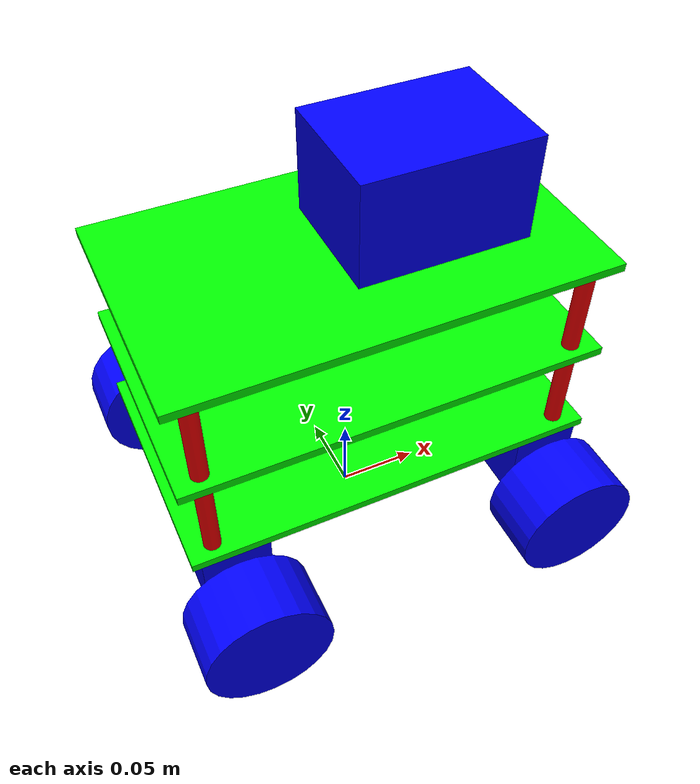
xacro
<?xml version="1.0"?>
<robot name="robot" xmlns:xacro="http://wiki.ros.org/xacro">

  <xacro:arg name="robot_type" default="omni"/>

  <xacro:property name="type" value="$(arg robot_type)" />

  <xacro:include filename="$(find haruto_description)/urdf/base.xacro"/>
  <xacro:include filename="$(find haruto_description)/urdf/pillar.xacro"/>
  <xacro:include filename="$(find haruto_description)/urdf/motor.xacro"/>
  <xacro:include filename="$(find haruto_description)/urdf/lidar.xacro"/>
  <xacro:include filename="$(find haruto_description)/urdf/wheel.xacro"/>

  <link name="world_link" />

  <xacro:robot_base parent="world_link" child="first_base_link" xyz="0 0 0.075" rpy="0 0 0" />
  <xacro:robot_base parent="first_base_link" child="second_base_link" xyz="0 0 0.06" rpy="0 0 0" />
  <xacro:robot_base parent="second_base_link" child="third_base_link" xyz="0 0 0.06" rpy="0 0 0" />

  <xacro:robot_pillar parent="first_base_link" child="first_front_left_pillar_link" xyz="0.11 0.065 0.03" rpy="0 0 0" />
  <xacro:robot_pillar parent="first_base_link" child="first_front_right_pillar_link" xyz="0.11 -0.065 0.03" rpy="0 0 0" />
  <xacro:robot_pillar parent="first_base_link" child="first_back_left_pillar_link" xyz="-0.11 0.065 0.03" rpy="0 0 0" />
  <xacro:robot_pillar parent="first_base_link" child="first_back_right_pillar_link" xyz="-0.11 -0.065 0.03" rpy="0 0 0" />

  <xacro:robot_pillar parent="second_base_link" child="second_front_left_pillar_link" xyz="0.11 0.065 0.03" rpy="0 0 0" />
  <xacro:robot_pillar parent="second_base_link" child="second_front_right_pillar_link" xyz="0.11 -0.065 0.03" rpy="0 0 0" />
  <xacro:robot_pillar parent="second_base_link" child="second_back_left_pillar_link" xyz="-0.11 0.065 0.03" rpy="0 0 0" />
  <xacro:robot_pillar parent="second_base_link" child="second_back_right_pillar_link" xyz="-0.11 -0.065 0.03" rpy="0 0 0" />

  <xacro:robot_motor parent="first_base_link" child="front_left_motor_link" xyz="0.10 0.040 -0.025" rpy="0 0 0" />
  <xacro:robot_motor parent="first_base_link" child="front_right_motor_link" xyz="0.10 -0.040 -0.025" rpy="0 0 0" />
  <xacro:robot_motor parent="first_base_link" child="back_left_motor_link" xyz="-0.10 0.040 -0.025" rpy="0 0 0" />
  <xacro:robot_motor parent="first_base_link" child="back_right_motor_link" xyz="-0.10 -0.040 -0.025" rpy="0 0 0" />

  <xacro:wheel parent="front_left_motor_link" child="front_left_wheel_link" xyz="0.0 0.060 -0.015" rpy="1.57 0 0" robot_type="$(arg robot_type)" />
  <xacro:wheel parent="front_right_motor_link" child="front_right_wheel_link" xyz="0.0 -0.060 -0.015" rpy="1.57 0 0" robot_type="$(arg robot_type)" />
  <xacro:wheel parent="back_left_motor_link" child="back_left_wheel_link" xyz="0.0 0.060 -0.015" rpy="1.57 0 0" robot_type="$(arg robot_type)" />
  <xacro:wheel parent="back_right_motor_link" child="back_right_wheel_link" xyz="0.0 -0.060 -0.015" rpy="1.57 0 0" robot_type="$(arg robot_type)" />

  <xacro:lidar parent="third_base_link" child="lidar_link" xyz="0.04 0.0 0.035" rpy="0 0 0" />

  <xacro:if value="${type == 'omni'}">
    <gazebo>
      <plugin name="object_controller" filename="libgazebo_ros_planar_move.so">
        <ros>
          <argument>odom:=odom</argument>
        </ros>
        <command_topic>cmd_vel</command_topic>
        <odometry_topic>odom</odometry_topic>
        <odometry_frame>odom</odometry_frame>
        <odometry_rate>20.0</odometry_rate>
        <robot_base_frame>world_link</robot_base_frame>
        <publish_odom>true</publish_odom>
        <publish_odom_tf>true</publish_odom_tf>
      </plugin>
    </gazebo>
  </xacro:if>

  <xacro:if value="${type == 'diff'}">
   <gazebo>
      <plugin name="skid_steer_drive" filename="libgazebo_ros_diff_drive.so">

         <num_wheel_pairs>2</num_wheel_pairs>

        <left_joint>front_left_motor_link_to_front_left_wheel_link_joint</left_joint>
        <right_joint>front_right_motor_link_to_front_right_wheel_link_joint</right_joint>
        <left_joint>back_left_motor_link_to_back_left_wheel_link_joint</left_joint>
        <right_joint>back_right_motor_link_to_back_right_wheel_link_joint</right_joint>

        <wheel_separation>0.215</wheel_separation>
        <wheel_separation>0.215</wheel_separation>

        <wheel_diameter>0.035</wheel_diameter>
        <wheel_diameter>0.035</wheel_diameter>

        <max_wheel_torque>50</max_wheel_torque>
        <max_wheel_acceleration>10.0</max_wheel_acceleration>

        <odometry_frame>odom</odometry_frame>
        <robot_base_frame>world_link</robot_base_frame>

        <publish_odom>true</publish_odom>
        <publish_odom_tf>true</publish_odom_tf>
        <publish_wheel_tf>true</publish_wheel_tf>
      </plugin>
     </gazebo>
  </xacro:if>

</robot>

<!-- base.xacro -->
<robot xmlns:xacro="http://wiki.ros.org/xacro">

  <xacro:macro name="robot_base" params="parent child xyz rpy">

    <link name="${child}">
      <visual>
        <geometry>
          <box size="0.25 0.15 0.005" />
        </geometry>
        <material name="green">
          <color rgba="0.0 1 0.0 1" />
        </material>
      </visual>
      <collision>
        <geometry>
          <box size="0.25 0.15 0.005" />
        </geometry>
      </collision>
      <inertial>
        <mass value="1.0" />
        <inertia ixx="0.015" ixy="0" ixz="0" iyy="0.0375" iyz="0.0" izz="0.0375" />
      </inertial>
    </link>

    <joint name="${parent}_to_${child}_joint" type="fixed">
      <origin xyz="${xyz}" rpy="${rpy}" />
      <parent link="${parent}" />
      <child link="${child}" />
    </joint>

  </xacro:macro>
</robot>

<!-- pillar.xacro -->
<robot xmlns:xacro="http://wiki.ros.org/xacro">

  <xacro:macro name="robot_pillar" params="parent child xyz rpy">

    <link name="${child}">
      <visual>
        <geometry>
          <cylinder radius="0.005" length="0.06" />
        </geometry>
        <material name="red">
          <color rgba="1 0.0 0.0 1" />
        </material>
      </visual>
      <collision>
        <geometry>
          <cylinder radius="0.005" length="0.06" />
        </geometry>
      </collision>
      <inertial>
        <mass value="1.0" />
        <inertia ixx="0.015" ixy="0" ixz="0" iyy="0.0375" iyz="0.0" izz="0.0375" />
      </inertial>
    </link>

    <joint name="${parent}_to_${child}_joint" type="fixed">
      <origin xyz="${xyz}" rpy="${rpy}" />
      <parent link="${parent}" />
      <child link="${child}" />
    </joint>

  </xacro:macro>

</robot>

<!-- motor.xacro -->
<robot xmlns:xacro="http://wiki.ros.org/xacro">

  <xacro:macro name="robot_motor" params="parent child xyz rpy">

    <link name="${child}">
      <visual>
        <geometry>
          <box size="0.04 0.07 0.045" />
        </geometry>
        <material name="blue">
          <color rgba="0.0 0.0 1 1" />
        </material>
      </visual>
      <collision>
        <geometry>
          <box size="0.04 0.07 0.045" />
        </geometry>
      </collision>
      <inertial>
        <mass value="1.5" />
        <inertia ixx="0.015" ixy="0" ixz="0" iyy="0.0375" iyz="0.0" izz="0.0275" />
      </inertial>
    </link>

    <joint name="${parent}_to_${child}_joint" type="fixed">
      <origin xyz="${xyz}" rpy="${rpy}" />
      <parent link="${parent}" />
      <child link="${child}" />
    </joint>

  </xacro:macro>

</robot>

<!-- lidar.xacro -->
<robot xmlns:xacro="http://wiki.ros.org/xacro">

  <xacro:macro name="lidar" params="parent child xyz rpy">

    <link name="${child}">
      <visual>
        <geometry>
          <box size="0.10 0.075 0.060" />
        </geometry>
        <material name="blue">
          <color rgba="0.0 0.0 1 1" />
        </material>
      </visual>
      <collision>
        <geometry>
          <box size="0.10 0.075 0.060" />
        </geometry>
      </collision>
      <inertial>
        <mass value="0.01" />
        <inertia ixx="0.015" ixy="0" ixz="0" iyy="0.0375" iyz="0.0" izz="0.0275" />
      </inertial>
    </link>

    <joint name="${parent}_to_${child}_joint" type="fixed">
      <origin xyz="${xyz}" rpy="${rpy}" />
      <parent link="${parent}" />
      <child link="${child}" />
    </joint>

    <gazebo reference="${child}">
      <sensor name="lidar" type="ray">
        <always_on>true</always_on>
        <visualize>true</visualize>
        <update_rate>5</update_rate>
        <ray>
          <scan>
            <horizontal>
              <samples>360</samples>
              <resolution>1.000000</resolution>
              <min_angle>0.000000</min_angle>
              <max_angle>6.280000</max_angle>
            </horizontal>
          </scan>
          <range>
            <min>0.120000</min>
            <max>3.5</max>
            <resolution>0.015000</resolution>
          </range>
          <noise>
            <type>gaussian</type>
            <mean>0.0</mean>
            <stddev>0.01</stddev>
          </noise>
        </ray>
        <plugin name="scan" filename="libgazebo_ros_ray_sensor.so">
          <ros>
            <remapping>~/out:=scan</remapping>
          </ros>
          <output_type>sensor_msgs/LaserScan</output_type>
          <frame_name>${child}</frame_name>
        </plugin>
      </sensor>
    </gazebo>

  </xacro:macro>

</robot>

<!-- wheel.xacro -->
<robot xmlns:xacro="http://wiki.ros.org/xacro">

  <xacro:macro name="wheel" params="parent child xyz rpy robot_type">

    <link name="${child}">
      <visual>
        <geometry>
          <cylinder radius="0.0375" length="0.04"/>
        </geometry>
        <material name="blue">
          <color rgba="0.0 0.0 1 1" />
        </material>
      </visual>
      <collision>
        <geometry>
          <cylinder radius="0.0375" length="0.04"/>
        </geometry>
      </collision>
      <inertial>
        <mass value="1.0" />
        <inertia ixx="0.015" ixy="0" ixz="0" iyy="0.0375" iyz="0.0" izz="0.0375" />
      </inertial>
    </link>

    <xacro:if value="${robot_type == 'omni'}">
      <joint name="${parent}_to_${child}_joint" type="fixed">
        <axis xyz="0.0 0.0 1"/>
        <origin xyz="${xyz}" rpy="${rpy}" />
        <parent link="${parent}" />
        <child link="${child}" />
      </joint>
    </xacro:if>

    <xacro:if value="${robot_type == 'diff'}">
      <joint name="${parent}_to_${child}_joint" type="continuous">
        <axis xyz="0.0 0.0 1"/>
        <origin xyz="${xyz}" rpy="${rpy}" />
        <parent link="${parent}" />
        <child link="${child}" />
      </joint>
    </xacro:if>

  </xacro:macro>

</robot>
